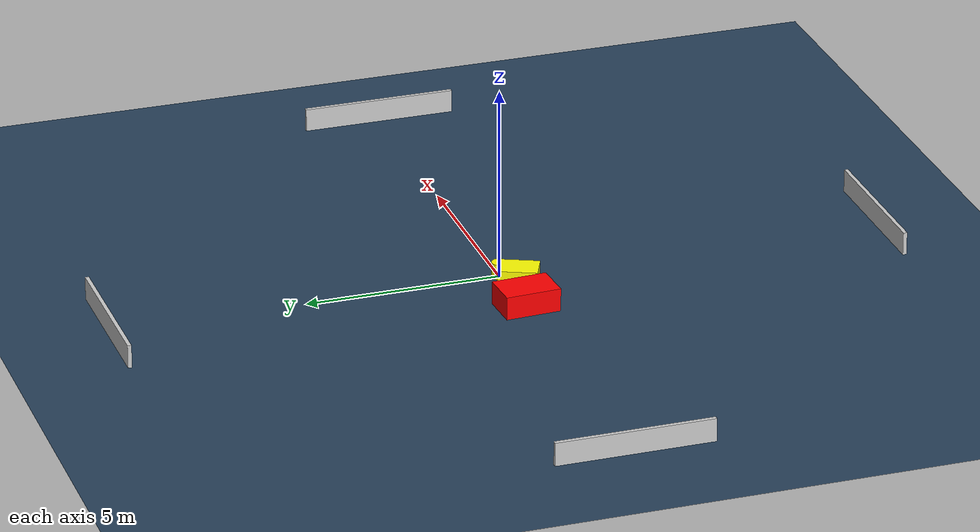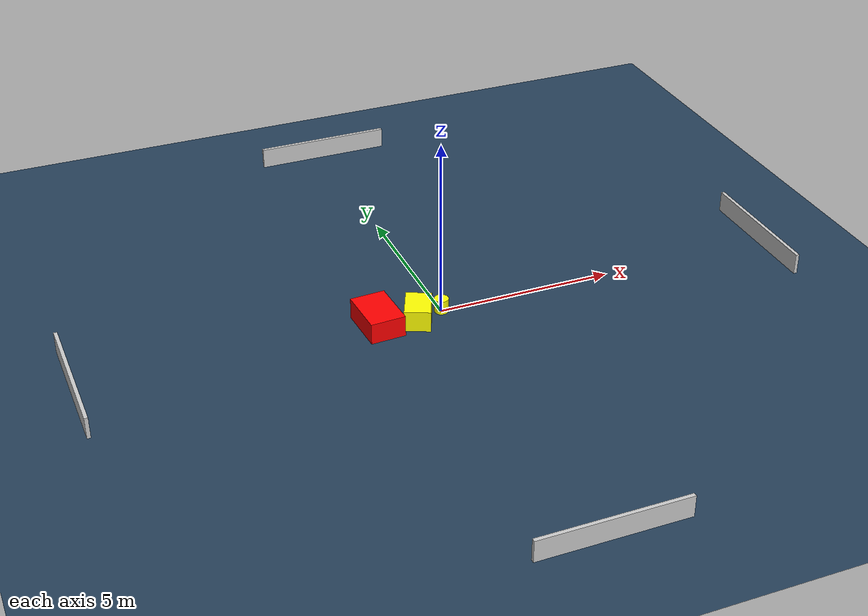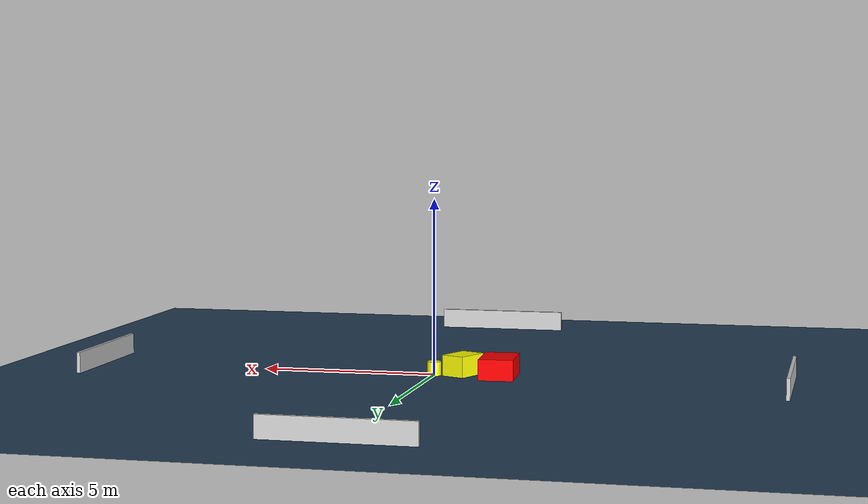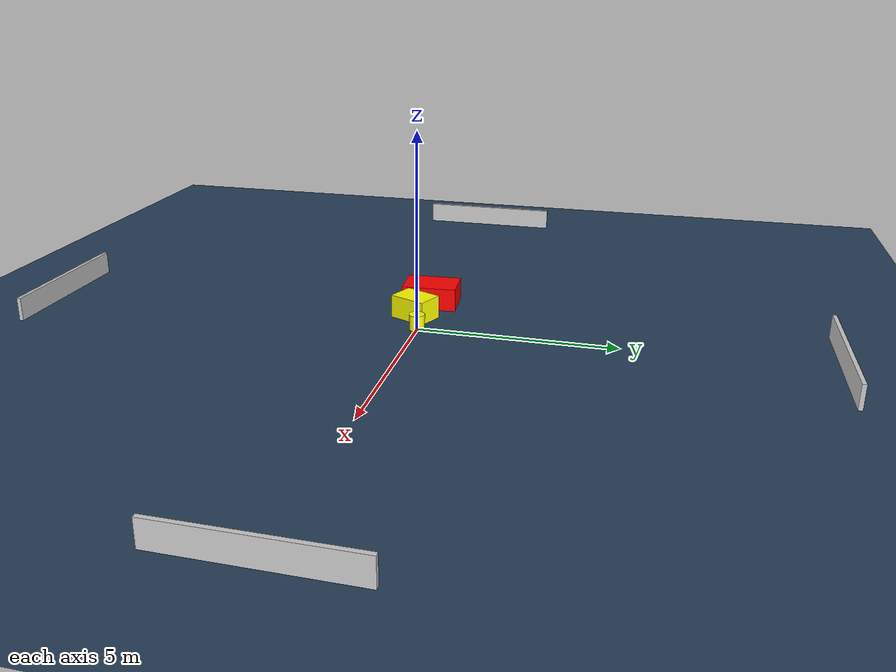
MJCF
<?xml version="1.0" ?>
<mujoco model="generated_environment">
  <option timestep="0.01" integrator="RK4" cone="elliptic"/>
  <default>
    <geom density="1"/>
  </default>
  <asset>
    <texture builtin="gradient" height="3072" name="skybox" rgb1="0.3 0.5 0.7" rgb2="0 0 0" type="skybox" width="512"/>
    <texture builtin="checker" height="300" name="groundplane" rgb1="0.2 0.3 0.4" rgb2="0.1 0.2 0.3" type="2d" width="300"/>
    <material name="groundplane" reflectance="0.2" texrepeat="5 5" texture="groundplane"/>
  </asset>
  <worldbody>
    <light dir="0 0 -1" directional="true" pos="0 0 1.5"/>
    <geom condim="3" friction="0.5 0.005 0.001" material="groundplane" name="floor" pos="0 0 0" size="0 0 0.05" type="plane"/>
    <body name="walls">
      <geom name="wall_1" condim="4" pos="-10.0 0.0 0.3" rgba="0.800000011920929 0.800000011920929 0.800000011920929 1.0" size="0.05 2.0 0.3" type="box"/>
      <geom name="wall_2" condim="4" pos="10.0 0.0 0.3" rgba="0.800000011920929 0.800000011920929 0.800000011920929 1.0" size="0.05 2.0 0.3" type="box"/>
      <geom name="wall_3" condim="4" pos="0.0 -10.0 0.3" rgba="0.800000011920929 0.800000011920929 0.800000011920929 1.0" size="2.0 0.05 0.3" type="box"/>
      <geom name="wall_4" condim="4" pos="0.0 10.0 0.3" rgba="0.800000011920929 0.800000011920929 0.800000011920929 1.0" size="2.0 0.05 0.3" type="box"/>
    </body>
    <body name="robot">
      <joint name="joint_x" type="slide" pos="0 0 0" axis="1 0 0"/>
      <joint name="joint_y" type="slide" pos="0 0 0" axis="0 1 0"/>
      <geom name="robot" type="cylinder" pos="0.0 0.0 0.2" size="0.2 0.2 0.0" mass="5.0" friction="1.0 0.005 0.0001" condim="4" rgba="1.0 1.0 0.0 1.0"/>
    </body>
    <body name="obstacle_1_movable">
      <geom name="obstacle_1_movable" condim="4" pos="-0.7751325313125788 -0.24653954771938136 0.3" euler="0 0 66.03824477175336" friction="0.0 0.005 0.001" rgba="1.0 1.0 0.0 1.0" size="0.49603792468043933 0.35661889562404403 0.3" type="box" mass="0.1"/>
      <joint type="free"/>
    </body>
    <body name="obstacle_2_static">
      <geom name="obstacle_2_static" condim="4" pos="-1.8632822921202095 -0.07363787253899907 0.3" euler="0 0 93.1163873440906" friction="0.0 0.005 0.001" rgba="1.0 0.0 0.0 1.0" size="0.7097484048631426 0.49278460059154566 0.3" type="box"/>
    </body>
  </worldbody>
  <actuator>
    <motor name="actuator_x" joint="joint_x" gear="1" ctrlrange="-1 1"/>
    <motor name="actuator_y" joint="joint_y" gear="1" ctrlrange="-1 1"/>
  </actuator>
</mujoco>
